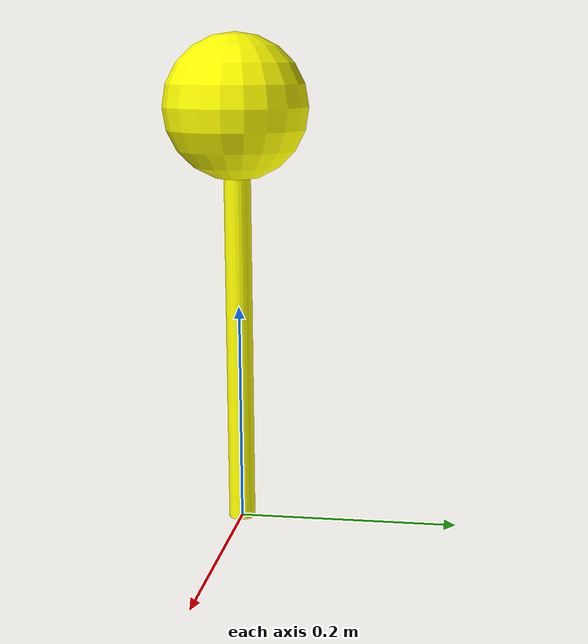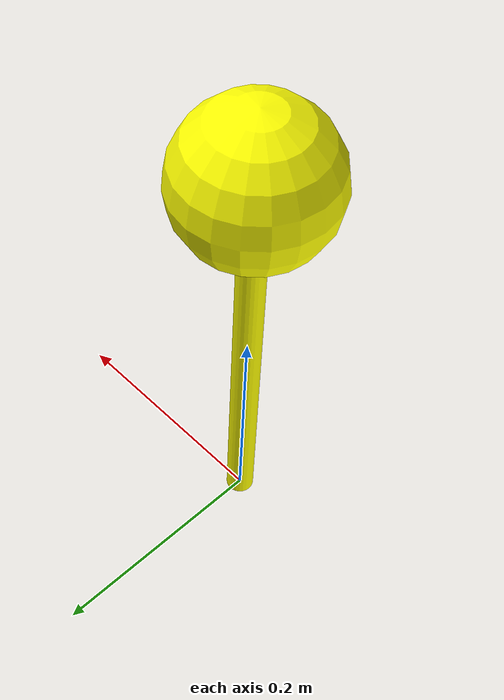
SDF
<?xml version="1.0"?>
<sdf version="1.9">
  <!-- Yellow = right shoulder.  The pole's base is the landmark's xy position. -->
  <model name="right_shoulder_marker"><static>true</static>
    <link name="right_shoulder_frame">
      <visual name="pole"><pose>0 0 0.18 0 0 0</pose><geometry><cylinder><radius>0.012</radius><length>0.36</length></cylinder></geometry><material><emissive>1 1 0 1</emissive><diffuse>1 1 0 1</diffuse></material></visual>
      <visual name="point"><pose>0 0 0.38 0 0 0</pose><geometry><sphere><radius>0.065</radius></sphere></geometry><material><emissive>1 1 0 1</emissive><diffuse>1 1 0 1</diffuse></material></visual>
    </link>
  </model>
</sdf>
